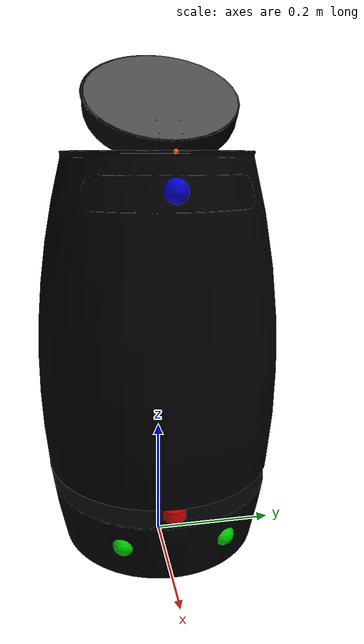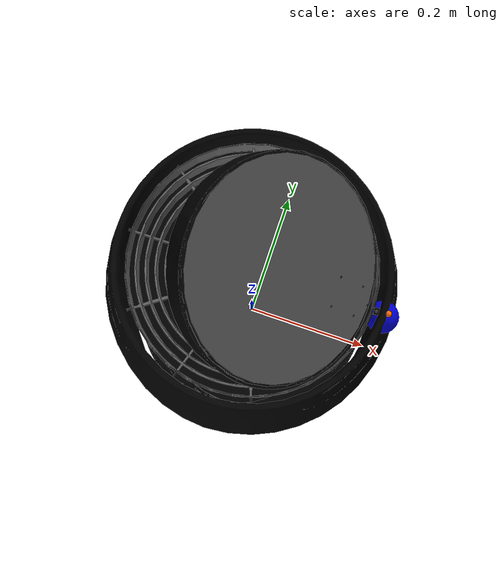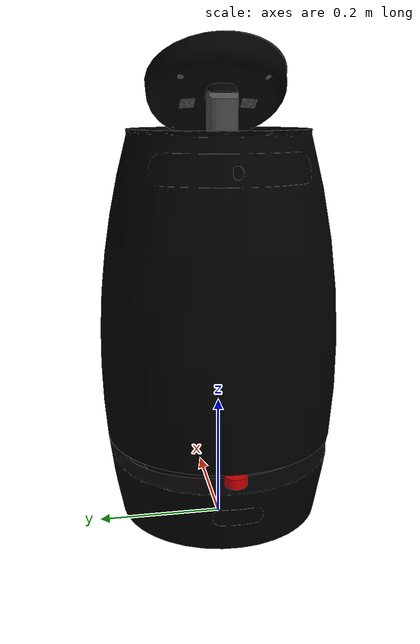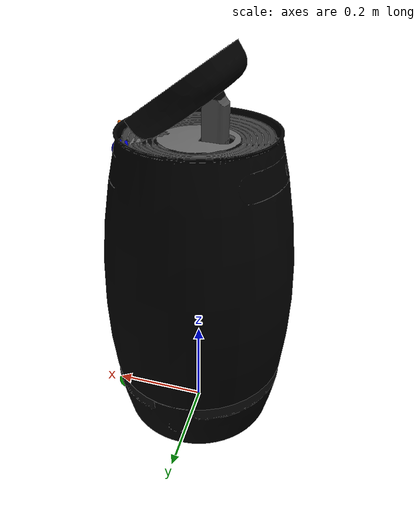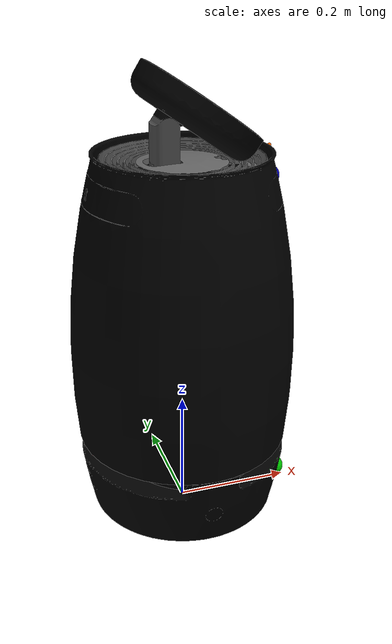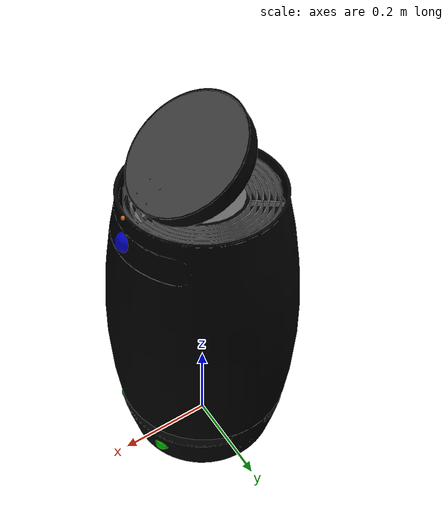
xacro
<?xml version="1.0"?>
<robot name="clean_robot" xmlns:xacro="http://ros.org/wiki/xacro">

  <!-- =========================== XACRO Properties ========================= -->

  <xacro:property name="PI" value="3.14159265359"/>

  <!-- Mesh directory property -->
  <xacro:property name="mesh_dir" value="package://namuhx-a1/meshes"/>

  <!-- Wheel properties -->
  <xacro:property name="wheel_main_radius" value="0.0501"/>
  <xacro:property name="wheel_main_displacement" value="0.1069"/>
  <xacro:property name="wheel_main_thickness" value="0.0307"/>
  <xacro:property name="wheel_sub_radius" value="0.0125"/>
  <xacro:property name="wheel_sub_displacement" value="0.1166"/>
  <xacro:property name="wheel_sub_swivel_factor" value="0.5"/>

  <!-- Lidar parameters -->
  <xacro:property name="lidar_update_rate" value="10"/>
  <xacro:property name="lidar_dist_min" value="0.05"/>
  <xacro:property name="lidar_dist_max" value="8"/>
  <xacro:property name="lidar_noise_std" value="0"/>
  <xacro:property name="lidar_range_resolution" value="0.001"/>
  <xacro:property name="lidar_samples_per_cycle" value="400"/>
  <xacro:property name="lidar_angle" value="1.8995"/>

  <!-- ToF parameters -->
  <xacro:property name="tof_update_rate" value="10"/>
  <xacro:property name="tof_hori_fov_deg" value="35"/>
  <xacro:property name="tof_vert_fov_deg" value="35"/>
  <xacro:property name="tof_angle_resolution_deg" value="4"/>
  <xacro:property name="tof_dist_min" value="0.05"/>
  <xacro:property name="tof_dist_max" value="4"/>
  <xacro:property name="tof_noise_std" value="0"/>
  <xacro:property name="tof_yaw_deg" value="16"/>
  <xacro:property name="tof_pitch_deg" value="0"/>

  <!-- Camera parameters -->
  <xacro:property name="camera_update_rate" value="10"/> <!-- actual value is 60 but agent step is 10Hz -->
  <xacro:property name="camera_hori_fov_deg" value="116"/>
  <xacro:property name="camera_pixels_width" value="640"/>
  <xacro:property name="camera_pixels_height" value="480"/>
  <xacro:property name="camera_pitch_deg" value="25"/>

  <!-- 1D Tof Parameters -->
  <xacro:property name="ray_pitch_deg" value="15"/>

  <material name="black">
      <color rgba="0.0 0.0 0.0 1.0"/>
  </material>

  <material name="dark">
    <color rgba="0.3 0.3 0.3 1.0"/>
  </material>

  <material name="light_black">
    <color rgba="0.4 0.4 0.4 1.0"/>
  </material>

  <material name="blue">
    <color rgba="0.0 0.0 0.8 1.0"/>
  </material>

  <material name="green">
    <color rgba="0.0 0.8 0.0 1.0"/>
  </material>

  <material name="grey">
    <color rgba="0.5 0.5 0.5 1.0"/>
  </material>

  <material name="orange">
    <color rgba="1.0 0.4235 0.0392 1.0"/>
  </material>

  <material name="brown">
    <color rgba="0.8706 0.8118 0.7647 1.0"/>
  </material>

  <material name="red">
    <color rgba="0.8 0.0 0.0 1.0"/>
  </material>

  <material name="white">
    <color rgba="1.0 1.0 1.0 1.0"/>
  </material>

  <link name="base_link">
    <visual>
      <origin xyz="0 0 0.065" rpy="0 0 0"/>
      <geometry>
        <cylinder length="0.08" radius="0.159" />
      </geometry>
      <material name="black"/>
    </visual>
    <collision>
      <origin xyz="0 0 0.065" rpy="0 0 0"/>
      <geometry>
        <cylinder length="0.08" radius="0.18" />
      </geometry>
    </collision>
    <inertial>
      <mass value="6.0"/>
      <origin xyz="0 0 0"/>
      <inertia ixx="0.01" ixy="0.0" ixz="0.0" iyy="0.01" iyz="0.0" izz="0.01"/>
    </inertial>
  </link>
  <gazebo reference="base_link">
    <material>Gazebo/Grey</material>
  </gazebo>

  <link name="hull_link">
    <visual>
      <origin xyz="0 0 0.32" rpy="0 0 0"/>
      <geometry>
        <cylinder length="0.56" radius="0.13" />
      </geometry>
      <material name="black"/>
    </visual>
    <collision>
      <origin xyz="0 0 0.425" rpy="0 0 0"/>
      <geometry>
        <cylinder length="0.64" radius="0.13" />
      </geometry>
    </collision>
    <inertial>
      <mass value="6.0"/>
      <origin xyz="0 0 0"/>
      <inertia ixx="0.18" ixy="0.0" ixz="0.0" iyy="0.18" iyz="0.0" izz="0.05"/>
    </inertial>
  </link>
  <gazebo reference="hull_link">
    <material>Gazebo/Black</material>
  </gazebo>

  <link name="hull_base">
    <visual>
      <origin xyz="0 0 0" rpy="0 0 0"/>
      <geometry>
        <mesh filename="${mesh_dir}/base.stl"/>
      </geometry>
      <material name="black"/>
    </visual>
  </link>
  <gazebo reference="hull_base">
    <material>Gazebo/Black</material>
  </gazebo>

  <link name="hull_grill">
    <visual>
      <origin xyz="0 0 0" rpy="0 0 0"/>
      <geometry>
        <mesh filename="${mesh_dir}/grill.stl"/>
      </geometry>
      <material name="light_black"/>
    </visual>
  </link>
  <gazebo reference="hull_grill">
    <material>Gazebo/Grey</material>
  </gazebo>

  <link name="hull_neck">
    <visual>
      <origin xyz="0 0 0" rpy="0 0 0"/>
      <geometry>
        <mesh filename="${mesh_dir}/neck.stl"/>
      </geometry>
      <material name="dark"/>
    </visual>
  </link>
  <gazebo reference="hull_neck">
    <material>Gazebo/DarkGrey</material>
  </gazebo>

  <link name="hull_head">
    <visual>
      <origin xyz="0 0 0" rpy="0 0 0"/>
      <geometry>
        <mesh filename="${mesh_dir}/head.stl"/>
      </geometry>
      <material name="black"/>
    </visual>
  </link>
  <gazebo reference="hull_head">
    <material>Gazebo/Black</material>
  </gazebo>

  <link name="hull_face">
    <visual>
      <origin xyz="0 0 0" rpy="0 0 0"/>
      <geometry>
        <mesh filename="${mesh_dir}/face.stl"/>
      </geometry>
      <material name="dark"/>
    </visual>
  </link>
  <gazebo reference="hull_face">
    <material>Gazebo/DarkGrey</material>
  </gazebo>

  <link name="wheel_main_left_link">
    <visual>
      <origin xyz="0 0 0" rpy="0 0 0"/>
      <geometry>
        <cylinder length="${wheel_main_thickness}" radius="${wheel_main_radius}" />
      </geometry>
      <material name="dark"/>
    </visual>
    <collision>
      <origin xyz="0 0 0" rpy="0 0 0"/>
      <geometry>
        <cylinder length="${wheel_main_thickness}" radius="${wheel_main_radius}" />
      </geometry>
    </collision>
    <inertial>
      <mass value="1.0"/>
      <origin xyz="0 0 0"/>
      <inertia ixx="0.01" ixy="0.0" ixz="0.0" iyy="0.01" iyz="0.0" izz="0.01"/>
    </inertial>
  </link>
  <gazebo reference="wheel_main_left_link">
    <material>Gazebo/DarkGrey</material>
  </gazebo>

  <link name="wheel_main_right_link">
    <visual>
      <origin xyz="0 0 0" rpy="0 0 0"/>
      <geometry>
        <cylinder length="${wheel_main_thickness}" radius="${wheel_main_radius}" />
      </geometry>
      <material name="dark"/>
    </visual>
    <collision>
      <origin xyz="0 0 0" rpy="0 0 0"/>
      <geometry>
        <cylinder length="${wheel_main_thickness}" radius="${wheel_main_radius}" />
      </geometry>
    </collision>
    <inertial>
      <mass value="1.0"/>
      <origin xyz="0 0 0"/>
      <inertia ixx="0.01" ixy="0.0" ixz="0.0" iyy="0.01" iyz="0.0" izz="0.01"/>
    </inertial>
  </link>
  <gazebo reference="wheel_main_right_link">
    <material>Gazebo/DarkGrey</material>
  </gazebo>

  <link name="wheel_sub_front_link">
    <visual>
      <origin xyz="0 0 0" rpy="0 0 0"/>
      <geometry>
        <sphere radius="${wheel_sub_radius}" />
      </geometry>
      <material name="dark"/>
    </visual>
    <collision>
      <origin xyz="0 0 0" rpy="0 0 0"/>
      <geometry>
        <sphere radius="${wheel_sub_radius}" />
      </geometry>
    </collision>
    <inertial>
      <mass value="0.2"/>
      <origin xyz="0 0 0"/>
      <inertia ixx="0.01" ixy="0.0" ixz="0.0" iyy="0.01" iyz="0.0" izz="0.01"/>
    </inertial>
  </link>
  <gazebo reference="wheel_sub_front_link">
    <material>Gazebo/DarkGrey</material>
  </gazebo>

  <link name="wheel_sub_front_swivel">
    <visual>
      <origin xyz="0 0 0.018" rpy="0 0 0"/>
      <geometry>
        <cylinder length="0.02" radius="${(wheel_sub_swivel_factor + 1.2) * wheel_sub_radius}" />
      </geometry>
      <material name="dark"/>
    </visual>
    <collision>
      <origin xyz="0 0 0.018" rpy="0 0 0"/>
      <geometry>
        <cylinder length="0.02" radius="${(wheel_sub_swivel_factor + 1.2) * wheel_sub_radius}" />
      </geometry>
    </collision>
    <inertial>
      <mass value="0.1"/>
      <origin xyz="0 0 0"/>
      <inertia ixx="0.01" ixy="0.0" ixz="0.0" iyy="0.01" iyz="0.0" izz="0.01"/>
    </inertial>
  </link>
  <gazebo reference="wheel_sub_front_swivel">
    <material>Gazebo/Grey</material>
  </gazebo>

  <link name="wheel_sub_back_link">
    <visual>
      <origin xyz="0 0 0" rpy="0 0 0"/>
      <geometry>
        <sphere radius="${wheel_sub_radius}" />
      </geometry>
      <material name="dark"/>
    </visual>
    <collision>
      <origin xyz="0 0 0" rpy="0 0 0"/>
      <geometry>
        <sphere radius="${wheel_sub_radius}" />
      </geometry>
    </collision>
    <inertial>
      <mass value="0.2"/>
      <origin xyz="0 0 0"/>
      <inertia ixx="0.01" ixy="0.0" ixz="0.0" iyy="0.01" iyz="0.0" izz="0.01"/>
    </inertial>
  </link>
  <gazebo reference="wheel_sub_back_link">
    <material>Gazebo/DarkGrey</material>
  </gazebo>

  <link name="wheel_sub_back_swivel">
    <visual>
      <origin xyz="0 0 0.018" rpy="0 0 0"/>
      <geometry>
        <cylinder length="0.02" radius="${(wheel_sub_swivel_factor + 1.2) * wheel_sub_radius}" />
      </geometry>
      <material name="dark"/>
    </visual>
    <collision>
      <origin xyz="0 0 0.018" rpy="0 0 0"/>
      <geometry>
        <cylinder length="0.02" radius="${(wheel_sub_swivel_factor + 1.2) * wheel_sub_radius}" />
      </geometry>
    </collision>
    <inertial>
      <mass value="0.1"/>
      <origin xyz="0 0 0"/>
      <inertia ixx="0.01" ixy="0.0" ixz="0.0" iyy="0.01" iyz="0.0" izz="0.01"/>
    </inertial>
  </link>
  <gazebo reference="wheel_sub_back_swivel">
    <material>Gazebo/Grey</material>
  </gazebo>

  <link name="imu_link"/>
  <link name="base_sensor"/>

  <link name="base_sensor_lidar_front">
    <visual>
      <origin xyz="0 0 0" rpy="0 0 0"/>
      <geometry>
        <cylinder length="0.0176" radius="0.0176" />
      </geometry>
      <material name="red"/>
    </visual>
  </link>
  <gazebo reference="base_sensor_lidar_front">
    <material>Gazebo/Red</material>
  </gazebo>

  <link name="base_sensor_lidar_back">
    <visual>
      <origin xyz="0 0 0" rpy="0 0 0"/>
      <geometry>
        <cylinder length="0.0176" radius="0.0176" />
      </geometry>
      <material name="red"/>
    </visual>
  </link>
  <gazebo reference="base_sensor_lidar_back">
    <material>Gazebo/Red</material>
  </gazebo>

  <link name="base_sensor_tof_left">
    <visual>
      <origin xyz="0 0 0" rpy="0 0 0"/>
      <geometry>
        <sphere radius="0.0176" />
      </geometry>
      <material name="green"/>
    </visual>
  </link>
  <gazebo reference="base_sensor_tof_left">
    <material>Gazebo/Green</material>
  </gazebo>

  <link name="base_sensor_tof_left_frame"/>

  <link name="base_sensor_tof_right">
    <visual>
      <origin xyz="0 0 0" rpy="0 0 0"/>
      <geometry>
        <sphere radius="0.0176" />
      </geometry>
      <material name="green"/>
    </visual>
  </link>
  <gazebo reference="base_sensor_tof_right">
    <material>Gazebo/Green</material>
  </gazebo>

  <link name="base_sensor_tof_right_frame"/>

  <link name="base_sensor_camera">
    <visual>
      <origin xyz="0 0 0" rpy="0 0 0"/>
      <geometry>
        <sphere radius="0.0176" />
      </geometry>
      <material name="blue"/>
    </visual>
  </link>
  <gazebo reference="base_sensor_camera">
    <material>Gazebo/SkyBlue</material>
  </gazebo>

  <link name="base_sensor_camera_frame"/>

  <link name="base_sensor_ray">
    <visual>
      <origin xyz="0 0 0" rpy="0 0 0"/>
      <geometry>
        <sphere radius="0.0034" />
      </geometry>
      <material name="orange"/>
    </visual>
  </link>
  <gazebo reference="base_sensor_ray">
    <material>Gazebo/Yellow</material>
  </gazebo>

  <!-- Joints -->
  <joint name="hull_joint" type="fixed">
    <parent link="base_link"/>
    <child link="hull_link"/>
    <origin xyz="0 0 0" rpy="0 0 ${PI/2}"/>
  </joint>

  <joint name="hull_base_joint" type="fixed">
    <parent link="hull_link"/>
    <child link="hull_base"/>
    <origin xyz="0 0 0" rpy="0 0 0"/>
  </joint>

  <joint name="hull_grill_joint" type="fixed">
    <parent link="hull_link"/>
    <child link="hull_grill"/>
    <origin xyz="0 0 0" rpy="0 0 0"/>
  </joint>

  <joint name="hull_neck_joint" type="fixed">
    <parent link="hull_link"/>
    <child link="hull_neck"/>
    <origin xyz="0 0 0" rpy="0 0 0"/>
  </joint>

  <joint name="hull_head_joint" type="fixed">
    <parent link="hull_link"/>
    <child link="hull_head"/>
    <origin xyz="0 0 0" rpy="0 0 0"/>
  </joint>

  <joint name="hull_face_joint" type="fixed">
    <parent link="hull_link"/>
    <child link="hull_face"/>
    <origin xyz="0 0 0" rpy="0 0 0"/>
  </joint>

  <joint name="wheel_main_left_joint" type="continuous">
    <parent link="base_link"/>
    <child link="wheel_main_left_link"/>
    <origin xyz="0 ${wheel_main_displacement} ${wheel_main_radius}" rpy="${-PI/2} 0 0"/>
    <axis xyz="0 0 1"/>
  </joint>

  <joint name="wheel_main_right_joint" type="continuous">
    <parent link="base_link"/>
    <child link="wheel_main_right_link"/>
    <origin xyz="0 -${wheel_main_displacement} ${wheel_main_radius}" rpy="${-PI/2} 0 0"/>
    <axis xyz="0 0 1"/>
  </joint>

  <joint name="wheel_sub_front_swivel_joint" type="continuous">
    <parent link="base_link"/>
    <child link="wheel_sub_front_swivel"/>
    <origin xyz="${wheel_sub_displacement} 0 ${wheel_sub_radius}" rpy="0 0 0"/>
    <axis xyz="0 0 1"/>
  </joint>

  <joint name="wheel_sub_front_joint" type="continuous">
    <parent link="wheel_sub_front_swivel"/>
    <child link="wheel_sub_front_link"/>
    <origin xyz="${wheel_sub_radius * wheel_sub_swivel_factor} 0 0" rpy="0 0 0"/>
    <axis xyz="0 1 0"/>
  </joint>

  <joint name="wheel_sub_back_swivel_joint" type="continuous">
    <parent link="base_link"/>
    <child link="wheel_sub_back_swivel"/>
    <origin xyz="-${wheel_sub_displacement} 0 ${wheel_sub_radius}" rpy="0 0 0"/>
    <axis xyz="0 0 1"/>
  </joint>

  <joint name="wheel_sub_back_joint" type="continuous">
    <parent link="wheel_sub_back_swivel"/>
    <child link="wheel_sub_back_link"/>
    <origin xyz="${wheel_sub_radius * wheel_sub_swivel_factor} 0 0" rpy="0 0 0"/>
    <axis xyz="0 1 0"/>
  </joint>

  <joint name="imu_joint" type="fixed">
    <parent link="base_link"/>
    <child link="imu_link"/>
    <origin xyz="0 0 0.09" rpy="0 0 0"/>
  </joint>

  <joint name="base_sensor_joint" type="fixed">
    <parent link="hull_link"/>
    <child link="base_sensor"/>
    <origin xyz="0 0 0.03" rpy="0 0 ${-PI/2}"/>
  </joint>

  <joint name="sensor_lidar_front_joint" type="fixed">
    <parent link="base_sensor"/>
    <child link="base_sensor_lidar_front"/>
    <origin xyz="0.1475 0 0.0984" rpy="0 0 0"/>
  </joint>

  <joint name="sensor_lidar_back_joint" type="fixed">
    <parent link="base_sensor"/>
    <child link="base_sensor_lidar_back"/>
    <origin xyz="-0.1475 0 0.0984" rpy="0 0 ${PI}"/>
  </joint>

  <joint name="sensor_tof_left_joint" type="fixed">
    <parent link="base_sensor"/>
    <child link="base_sensor_tof_left"/>
    <origin xyz="0.145 0.075 0.052" rpy="0 ${tof_pitch_deg * PI / 180} ${tof_yaw_deg * PI / 180}"/>
  </joint>

  <joint name="sensor_tof_left_frame_joint" type="fixed">
    <parent link="base_sensor_tof_left"/>
    <child link="base_sensor_tof_left_frame"/>
    <origin xyz="0 0 0" rpy="${-PI/2} 0 ${-PI/2}"/>
  </joint>

  <joint name="sensor_tof_right_joint" type="fixed">
    <parent link="base_sensor"/>
    <child link="base_sensor_tof_right"/>
    <origin xyz="0.145 -0.075 0.052" rpy="0 ${tof_pitch_deg * PI / 180} -${tof_yaw_deg * PI / 180}"/>
  </joint>

  <joint name="sensor_tof_right_frame_joint" type="fixed">
    <parent link="base_sensor_tof_right"/>
    <child link="base_sensor_tof_right_frame"/>
    <origin xyz="0 0 0" rpy="${-PI/2} 0 ${-PI/2}"/>
  </joint>

  <joint name="sensor_camera_joint" type="fixed">
    <parent link="base_sensor"/>
    <child link="base_sensor_camera"/>
    <origin xyz="0.145 0 0.561" rpy="0 ${camera_pitch_deg * PI / 180} 0"/>
  </joint>

  <joint name="sensor_camera_frame_joint" type="fixed">
    <parent link="base_sensor_camera"/>
    <child link="base_sensor_camera_frame"/>
    <origin xyz="0 0 0" rpy="${-PI/2} 0 ${-PI/2}"/>
  </joint>

  <joint name="sensor_ray_joint" type="fixed">
    <parent link="base_sensor"/>
    <child link="base_sensor_ray"/>
    <origin xyz="0.144 0 0.6095" rpy="0 -${ray_pitch_deg * PI / 180} 0"/>
  </joint>

  <!-- Plugins -->
  <gazebo>
    <plugin name="diff_drive_controller" filename="libgazebo_ros_diff_drive.so">

      <left_joint>wheel_main_left_joint</left_joint>
      <right_joint>wheel_main_right_joint</right_joint>
      <wheel_separation>${2 * wheel_main_displacement}</wheel_separation>
      <wheel_diameter>${2 * wheel_main_radius}</wheel_diameter>
      <command_topic>cmd_vel</command_topic>
      <odometry_topic>odom</odometry_topic>
      <robot_base_frame>base_link</robot_base_frame>
      <publish_odom>true</publish_odom>
      <publish_odom_tf>true</publish_odom_tf>
    </plugin>
  </gazebo>

  <gazebo reference="base_sensor_lidar_front">
    <sensor type="ray" name="base_sensor_lidar_front_sensor">
      <update_rate>${lidar_update_rate}</update_rate>

      <ray>
        <scan>
          <horizontal>
            <samples>${int(lidar_samples_per_cycle * lidar_angle / PI)}</samples>
            <resolution>1</resolution>
            <min_angle>-${lidar_angle}</min_angle>
            <max_angle>${lidar_angle}</max_angle>
          </horizontal>
        </scan>
        <range>
          <min>${lidar_dist_min}</min>
          <max>${lidar_dist_max}</max>
          <resolution>${lidar_range_resolution}</resolution>
        </range>
        <noise>
          <type>gaussian</type>
          <mean>0.0</mean>
          <stddev>${lidar_noise_std}</stddev>
        </noise>
      </ray>

      <plugin name="base_sensor_lidar_front_controller" filename="libgazebo_ros_ray_sensor.so">
        <output_type>sensor_msgs/LaserScan</output_type>
        <frame_name>base_sensor_lidar_front</frame_name>
      </plugin>
    </sensor>
  </gazebo>

  <gazebo reference="base_sensor_lidar_back">
    <sensor type="ray" name="base_sensor_lidar_back_sensor">
      <update_rate>${lidar_update_rate}</update_rate>

      <ray>
        <scan>
          <horizontal>
            <samples>${int(lidar_samples_per_cycle * lidar_angle / PI)}</samples>
            <resolution>1</resolution>
            <min_angle>-${lidar_angle}</min_angle>
            <max_angle>${lidar_angle}</max_angle>
          </horizontal>
        </scan>
        <range>
          <min>${lidar_dist_min}</min>
          <max>${lidar_dist_max}</max>
          <resolution>${lidar_range_resolution}</resolution>
        </range>
        <noise>
          <type>gaussian</type>
          <mean>0.0</mean>
          <stddev>${lidar_noise_std}</stddev>
        </noise>
      </ray>

      <plugin name="base_sensor_lidar_back_controller" filename="libgazebo_ros_ray_sensor.so">
        <output_type>sensor_msgs/LaserScan</output_type>
        <frame_name>base_sensor_lidar_back</frame_name>
      </plugin>
    </sensor>
  </gazebo>

  <gazebo reference="base_sensor_tof_left">
    <sensor type="depth" name="base_sensor_tof_left_sensor">
      <update_rate>${tof_update_rate}</update_rate>
      <camera>
        <horizontal_fov>${tof_hori_fov_deg * PI / 180}</horizontal_fov>
        <image>
          <width>${int(tof_hori_fov_deg / tof_angle_resolution_deg)}</width>
          <height>${int(tof_vert_fov_deg / tof_angle_resolution_deg)}</height>
          <format>R8G8B8</format>
        </image>
        <clip>
          <near>0.05</near>
          <far>${tof_dist_max}</far>
        </clip>
        <noise>
          <type>gaussian</type>
          <mean>0</mean>
          <stddev>${tof_noise_std}</stddev>
        </noise>
      </camera>

      <plugin name="base_sensor_tof_left_controller" filename="libgazebo_ros_camera.so">
        <frame_name>base_sensor_tof_left_frame</frame_name>

        <min_depth>${tof_dist_min}</min_depth>
        <max_depth>${tof_dist_max}</max_depth>
      </plugin>
    </sensor>
  </gazebo>

  <gazebo reference="base_sensor_tof_right">
    <sensor type="depth" name="base_sensor_tof_right_sensor">
      <update_rate>${tof_update_rate}</update_rate>
      <camera>
        <horizontal_fov>${tof_hori_fov_deg * PI / 180}</horizontal_fov>
        <image>
          <width>${int(tof_hori_fov_deg / tof_angle_resolution_deg)}</width>
          <height>${int(tof_vert_fov_deg / tof_angle_resolution_deg)}</height>
          <format>R8G8B8</format>
        </image>
        <clip>
          <near>0.05</near>
          <far>${tof_dist_max}</far>
        </clip>
        <noise>
          <type>gaussian</type>
          <mean>0</mean>
          <stddev>${tof_noise_std}</stddev>
        </noise>
      </camera>

      <plugin name="base_sensor_tof_right_controller" filename="libgazebo_ros_camera.so">

        <frame_name>base_sensor_tof_right_frame</frame_name>
        <min_depth>${tof_dist_min}</min_depth>
        <max_depth>${tof_dist_max}</max_depth>
      </plugin>
    </sensor>
  </gazebo>

  <gazebo reference="base_sensor_camera">
    <sensor type="camera" name="base_sensor_camera_sensor">
      <update_rate>${camera_update_rate}</update_rate>
      <camera>
        <horizontal_fov>${camera_hori_fov_deg * PI / 180}</horizontal_fov>
        <image>
          <width>${camera_pixels_width}</width>
          <height>${camera_pixels_height}</height>
          <format>R8G8B8</format>
        </image>
        <clip>
          <near>0.05</near>
          <far>40</far>
        </clip>
      </camera>

      <plugin name="base_sensor_camera_controller" filename="libgazebo_ros_camera.so">
        <frame_name>base_sensor_camera_frame</frame_name>
      </plugin>
    </sensor>
  </gazebo>

  <gazebo reference="base_sensor_ray">
    <sensor type="ray" name="base_sensor_ray_sensor">
      <update_rate>${lidar_update_rate}</update_rate>

      <ray>
        <scan>
          <horizontal>
            <samples>3</samples>
            <resolution>1</resolution>
            <min_angle>-0.005</min_angle>
            <max_angle>0.005</max_angle>
          </horizontal>
        </scan>
        <range>
          <min>0.01</min>
          <max>1</max>
          <resolution>${lidar_range_resolution}</resolution>
        </range>
        <noise>
          <type>gaussian</type>
          <mean>0.0</mean>
          <stddev>${lidar_noise_std}</stddev>
        </noise>
      </ray>

      <plugin name="base_sensor_ray_controller" filename="libgazebo_ros_ray_sensor.so">
        <output_type>sensor_msgs/LaserScan</output_type>
        <frame_name>base_sensor_ray</frame_name>
      </plugin>
    </sensor>
  </gazebo>

<xacro:macro name="collision_ray" params="index joint_height">
  <link name="collision_ray_${index}"/>
  <joint name="collision_ray_${index}_joint" type="fixed">
    <parent link="base_link"/>
    <child link="collision_ray_${index}"/>
    <origin xyz="0 0 ${joint_height}" rpy="0 0 0"/>
  </joint>
  <gazebo reference="collision_ray_${index}">
    <sensor type="ray" name="collision_ray_${index}_sensor">
      <update_rate>${lidar_update_rate}</update_rate>
      <ray>
        <scan>
          <horizontal>
            <samples>32</samples>
            <resolution>1</resolution>
            <min_angle>-3.14</min_angle>
            <max_angle>3.14</max_angle>
          </horizontal>
        </scan>
        <range>
          <min>0.2</min>
          <max>0.3</max>
          <resolution>0.001</resolution>
        </range>
        <noise>
          <type>gaussian</type>
          <mean>0.0</mean>
          <stddev>0</stddev>
        </noise>
      </ray>
      <plugin name="collision_ray_${index}_controller" filename="libgazebo_ros_ray_sensor.so">
        <output_type>sensor_msgs/LaserScan</output_type>
        <frame_name>collision_ray_${index}</frame_name>
      </plugin>
    </sensor>
  </gazebo>
</xacro:macro>

<xacro:collision_ray index="0" joint_height="0.03"/>
<xacro:collision_ray index="1" joint_height="0.25"/>
<xacro:collision_ray index="2" joint_height="0.5"/>
<xacro:collision_ray index="3" joint_height="0.75"/>

</robot>
